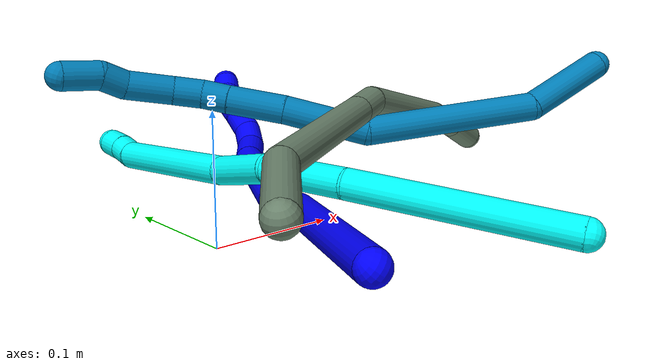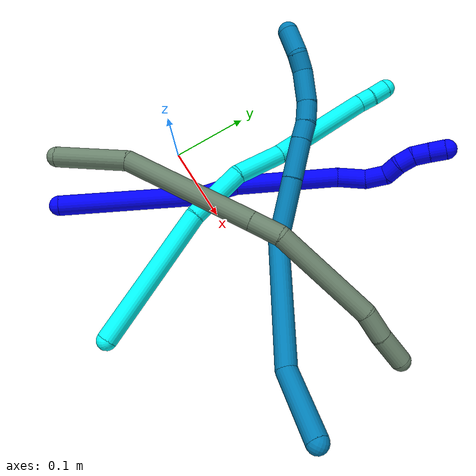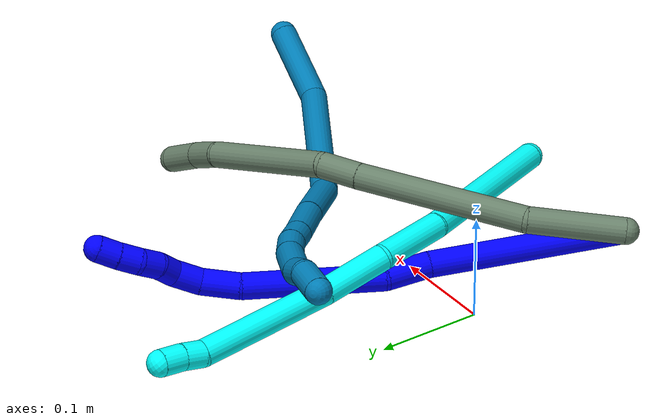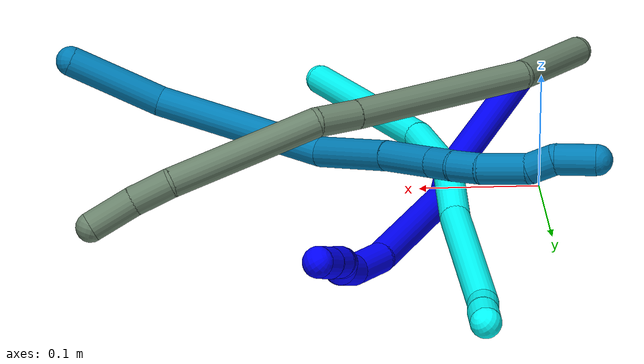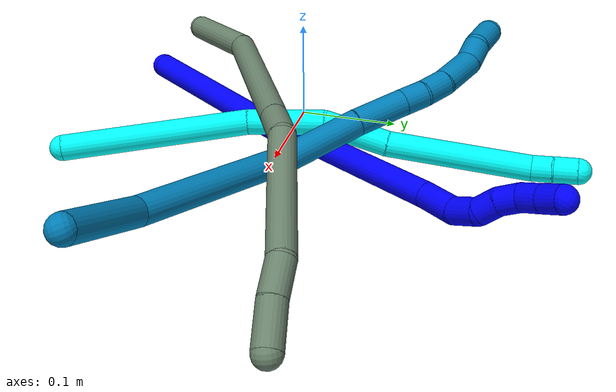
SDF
<sdf version="1.7">
 <world name="default">
  <model name="1">
   <static>0</static>
   <link name="1">
    <collision name="collision-cylinder-e_1_1_4">
     <pose>0.024673 0.086013 -0.006779 -1.64945 0.278531 -0.301017</pose>
     <geometry><cylinder><radius>0.0125</radius><length>0.179476</length></cylinder></geometry>
     <surface>
      <friction><ode><mu>1.16</mu><mu2>1.16</mu2><slip1>0</slip1><slip2>0</slip2></ode></friction>
      <contact><ode><kp>1e+06</kp><kd>1</kd><max_vel>0</max_vel><min_depth>0.001</min_depth></ode></contact>
     </surface>
    </collision>
    <visual name="visual-cylinder-e_1_1_4">
     <pose>0.024673 0.086013 -0.006779 -1.64945 0.278531 -0.301017</pose>
     <geometry><cylinder><radius>0.0125</radius><length>0.179476</length></cylinder></geometry>
     <material><ambient>0 0 1 1</ambient></material>
    </visual>
    <collision name="collision-cylinder-e_2_4_5">
     <pose>0.052414 0.193198 -0.010666 -1.43506 0.142604 -0.124502</pose>
     <geometry><cylinder><radius>0.0125</radius><length>0.043176</length></cylinder></geometry>
     <surface>
      <friction><ode><mu>1.16</mu><mu2>1.16</mu2><slip1>0</slip1><slip2>0</slip2></ode></friction>
      <contact><ode><kp>1e+06</kp><kd>1</kd><max_vel>0</max_vel><min_depth>0.001</min_depth></ode></contact>
     </surface>
    </collision>
    <visual name="visual-cylinder-e_2_4_5">
     <pose>0.052414 0.193198 -0.010666 -1.43506 0.142604 -0.124502</pose>
     <geometry><cylinder><radius>0.0125</radius><length>0.043176</length></cylinder></geometry>
     <material><ambient>0 0 1 1</ambient></material>
    </visual>
    <collision name="collision-cylinder-e_3_5_6">
     <pose>0.08051 0.275636 -0.01003 -1.60759 0.387593 -0.401742</pose>
     <geometry><cylinder><radius>0.0125</radius><length>0.132439</length></cylinder></geometry>
     <surface>
      <friction><ode><mu>1.16</mu><mu2>1.16</mu2><slip1>0</slip1><slip2>0</slip2></ode></friction>
      <contact><ode><kp>1e+06</kp><kd>1</kd><max_vel>0</max_vel><min_depth>0.001</min_depth></ode></contact>
     </surface>
    </collision>
    <visual name="visual-cylinder-e_3_5_6">
     <pose>0.08051 0.275636 -0.01003 -1.60759 0.387593 -0.401742</pose>
     <geometry><cylinder><radius>0.0125</radius><length>0.132439</length></cylinder></geometry>
     <material><ambient>0 0 1 1</ambient></material>
    </visual>
    <collision name="collision-cylinder-e_4_6_7">
     <pose>0.115543 0.352234 -0.014753 -1.7304 0.572308 -0.665108</pose>
     <geometry><cylinder><radius>0.0125</radius><length>0.036946</length></cylinder></geometry>
     <surface>
      <friction><ode><mu>1.16</mu><mu2>1.16</mu2><slip1>0</slip1><slip2>0</slip2></ode></friction>
      <contact><ode><kp>1e+06</kp><kd>1</kd><max_vel>0</max_vel><min_depth>0.001</min_depth></ode></contact>
     </surface>
    </collision>
    <visual name="visual-cylinder-e_4_6_7">
     <pose>0.115543 0.352234 -0.014753 -1.7304 0.572308 -0.665108</pose>
     <geometry><cylinder><radius>0.0125</radius><length>0.036946</length></cylinder></geometry>
     <material><ambient>0 0 1 1</ambient></material>
    </visual>
    <collision name="collision-cylinder-e_5_7_8">
     <pose>0.134283 0.377462 -0.014481 -1.3007 0.704883 -0.545656</pose>
     <geometry><cylinder><radius>0.0125</radius><length>0.026962</length></cylinder></geometry>
     <surface>
      <friction><ode><mu>1.16</mu><mu2>1.16</mu2><slip1>0</slip1><slip2>0</slip2></ode></friction>
      <contact><ode><kp>1e+06</kp><kd>1</kd><max_vel>0</max_vel><min_depth>0.001</min_depth></ode></contact>
     </surface>
    </collision>
    <visual name="visual-cylinder-e_5_7_8">
     <pose>0.134283 0.377462 -0.014481 -1.3007 0.704883 -0.545656</pose>
     <geometry><cylinder><radius>0.0125</radius><length>0.026962</length></cylinder></geometry>
     <material><ambient>0 0 1 1</ambient></material>
    </visual>
    <collision name="collision-cylinder-e_6_8_9">
     <pose>0.148359 0.392824 -0.005048 -0.684729 0.553612 -0.201818</pose>
     <geometry><cylinder><radius>0.0125</radius><length>0.020316</length></cylinder></geometry>
     <surface>
      <friction><ode><mu>1.16</mu><mu2>1.16</mu2><slip1>0</slip1><slip2>0</slip2></ode></friction>
      <contact><ode><kp>1e+06</kp><kd>1</kd><max_vel>0</max_vel><min_depth>0.001</min_depth></ode></contact>
     </surface>
    </collision>
    <visual name="visual-cylinder-e_6_8_9">
     <pose>0.148359 0.392824 -0.005048 -0.684729 0.553612 -0.201818</pose>
     <geometry><cylinder><radius>0.0125</radius><length>0.020316</length></cylinder></geometry>
     <material><ambient>0 0 1 1</ambient></material>
    </visual>
    <collision name="collision-cylinder-e_7_9_10">
     <pose>0.158638 0.40577 0.006432 -1.00156 0.507473 -0.281982</pose>
     <geometry><cylinder><radius>0.0125</radius><length>0.020325</length></cylinder></geometry>
     <surface>
      <friction><ode><mu>1.16</mu><mu2>1.16</mu2><slip1>0</slip1><slip2>0</slip2></ode></friction>
      <contact><ode><kp>1e+06</kp><kd>1</kd><max_vel>0</max_vel><min_depth>0.001</min_depth></ode></contact>
     </surface>
    </collision>
    <visual name="visual-cylinder-e_7_9_10">
     <pose>0.158638 0.40577 0.006432 -1.00156 0.507473 -0.281982</pose>
     <geometry><cylinder><radius>0.0125</radius><length>0.020325</length></cylinder></geometry>
     <material><ambient>0 0 1 1</ambient></material>
    </visual>
    <collision name="collision-cylinder-e_8_10_11">
     <pose>0.169825 0.420959 0.01314 -1.32652 0.666435 -0.528247</pose>
     <geometry><cylinder><radius>0.0125</radius><length>0.020214</length></cylinder></geometry>
     <surface>
      <friction><ode><mu>1.16</mu><mu2>1.16</mu2><slip1>0</slip1><slip2>0</slip2></ode></friction>
      <contact><ode><kp>1e+06</kp><kd>1</kd><max_vel>0</max_vel><min_depth>0.001</min_depth></ode></contact>
     </surface>
    </collision>
    <visual name="visual-cylinder-e_8_10_11">
     <pose>0.169825 0.420959 0.01314 -1.32652 0.666435 -0.528247</pose>
     <geometry><cylinder><radius>0.0125</radius><length>0.020214</length></cylinder></geometry>
     <material><ambient>0 0 1 1</ambient></material>
    </visual>
    <collision name="collision-cylinder-e_9_11_2">
     <pose>0.182886 0.435883 0.016789 -1.33581 0.742875 -0.59623</pose>
     <geometry><cylinder><radius>0.0125</radius><length>0.020146</length></cylinder></geometry>
     <surface>
      <friction><ode><mu>1.16</mu><mu2>1.16</mu2><slip1>0</slip1><slip2>0</slip2></ode></friction>
      <contact><ode><kp>1e+06</kp><kd>1</kd><max_vel>0</max_vel><min_depth>0.001</min_depth></ode></contact>
     </surface>
    </collision>
    <visual name="visual-cylinder-e_9_11_2">
     <pose>0.182886 0.435883 0.016789 -1.33581 0.742875 -0.59623</pose>
     <geometry><cylinder><radius>0.0125</radius><length>0.020146</length></cylinder></geometry>
     <material><ambient>0 0 1 1</ambient></material>
    </visual>
    <collision name="collision-sphere-2">
     <pose>0.189699 0.443098 0.018516 0 -0 0</pose>
     <geometry><sphere><radius>0.0125</radius></sphere></geometry>
     <surface>
      <friction><ode><mu>1.16</mu><mu2>1.16</mu2><slip1>0</slip1><slip2>0</slip2></ode></friction>
      <contact><ode><kp>1e+06</kp><kd>1</kd><max_vel>0</max_vel><min_depth>0.001</min_depth></ode></contact>
     </surface>
    </collision>
    <visual name="visual-sphere-2">
     <pose>0.189699 0.443098 0.018516 0 -0 0</pose>
     <geometry><sphere><radius>0.0125</radius></sphere></geometry>
     <material><ambient>0 0 1 1</ambient></material>
    </visual>
    <collision name="collision-sphere-11">
     <pose>0.176073 0.428668 0.015062 0 -0 0</pose>
     <geometry><sphere><radius>0.0125</radius></sphere></geometry>
     <surface>
      <friction><ode><mu>1.16</mu><mu2>1.16</mu2><slip1>0</slip1><slip2>0</slip2></ode></friction>
      <contact><ode><kp>1e+06</kp><kd>1</kd><max_vel>0</max_vel><min_depth>0.001</min_depth></ode></contact>
     </surface>
    </collision>
    <visual name="visual-sphere-11">
     <pose>0.176073 0.428668 0.015062 0 -0 0</pose>
     <geometry><sphere><radius>0.0125</radius></sphere></geometry>
     <material><ambient>0 0 1 1</ambient></material>
    </visual>
    <collision name="collision-sphere-10">
     <pose>0.163577 0.413251 0.011219 0 -0 0</pose>
     <geometry><sphere><radius>0.0125</radius></sphere></geometry>
     <surface>
      <friction><ode><mu>1.16</mu><mu2>1.16</mu2><slip1>0</slip1><slip2>0</slip2></ode></friction>
      <contact><ode><kp>1e+06</kp><kd>1</kd><max_vel>0</max_vel><min_depth>0.001</min_depth></ode></contact>
     </surface>
    </collision>
    <visual name="visual-sphere-10">
     <pose>0.163577 0.413251 0.011219 0 -0 0</pose>
     <geometry><sphere><radius>0.0125</radius></sphere></geometry>
     <material><ambient>0 0 1 1</ambient></material>
    </visual>
    <collision name="collision-sphere-9">
     <pose>0.1537 0.398289 0.001645 0 -0 0</pose>
     <geometry><sphere><radius>0.0125</radius></sphere></geometry>
     <surface>
      <friction><ode><mu>1.16</mu><mu2>1.16</mu2><slip1>0</slip1><slip2>0</slip2></ode></friction>
      <contact><ode><kp>1e+06</kp><kd>1</kd><max_vel>0</max_vel><min_depth>0.001</min_depth></ode></contact>
     </surface>
    </collision>
    <visual name="visual-sphere-9">
     <pose>0.1537 0.398289 0.001645 0 -0 0</pose>
     <geometry><sphere><radius>0.0125</radius></sphere></geometry>
     <material><ambient>0 0 1 1</ambient></material>
    </visual>
    <collision name="collision-sphere-4">
     <pose>0.049346 0.172025 -0.013558 0 -0 0</pose>
     <geometry><sphere><radius>0.0125</radius></sphere></geometry>
     <surface>
      <friction><ode><mu>1.16</mu><mu2>1.16</mu2><slip1>0</slip1><slip2>0</slip2></ode></friction>
      <contact><ode><kp>1e+06</kp><kd>1</kd><max_vel>0</max_vel><min_depth>0.001</min_depth></ode></contact>
     </surface>
    </collision>
    <visual name="visual-sphere-4">
     <pose>0.049346 0.172025 -0.013558 0 -0 0</pose>
     <geometry><sphere><radius>0.0125</radius></sphere></geometry>
     <material><ambient>0 0 1 1</ambient></material>
    </visual>
    <collision name="collision-sphere-1">
     <geometry><sphere><radius>0.0125</radius></sphere></geometry>
     <surface>
      <friction><ode><mu>1.16</mu><mu2>1.16</mu2><slip1>0</slip1><slip2>0</slip2></ode></friction>
      <contact><ode><kp>1e+06</kp><kd>1</kd><max_vel>0</max_vel><min_depth>0.001</min_depth></ode></contact>
     </surface>
    </collision>
    <visual name="visual-sphere-1">
     <geometry><sphere><radius>0.0125</radius></sphere></geometry>
     <material><ambient>0 0 1 1</ambient></material>
    </visual>
    <collision name="collision-sphere-8">
     <pose>0.143018 0.387358 -0.011742 0 -0 0</pose>
     <geometry><sphere><radius>0.0125</radius></sphere></geometry>
     <surface>
      <friction><ode><mu>1.16</mu><mu2>1.16</mu2><slip1>0</slip1><slip2>0</slip2></ode></friction>
      <contact><ode><kp>1e+06</kp><kd>1</kd><max_vel>0</max_vel><min_depth>0.001</min_depth></ode></contact>
     </surface>
    </collision>
    <visual name="visual-sphere-8">
     <pose>0.143018 0.387358 -0.011742 0 -0 0</pose>
     <geometry><sphere><radius>0.0125</radius></sphere></geometry>
     <material><ambient>0 0 1 1</ambient></material>
    </visual>
    <collision name="collision-sphere-5">
     <pose>0.055482 0.21437 -0.007775 0 -0 0</pose>
     <geometry><sphere><radius>0.0125</radius></sphere></geometry>
     <surface>
      <friction><ode><mu>1.16</mu><mu2>1.16</mu2><slip1>0</slip1><slip2>0</slip2></ode></friction>
      <contact><ode><kp>1e+06</kp><kd>1</kd><max_vel>0</max_vel><min_depth>0.001</min_depth></ode></contact>
     </surface>
    </collision>
    <visual name="visual-sphere-5">
     <pose>0.055482 0.21437 -0.007775 0 -0 0</pose>
     <geometry><sphere><radius>0.0125</radius></sphere></geometry>
     <material><ambient>0 0 1 1</ambient></material>
    </visual>
    <collision name="collision-sphere-6">
     <pose>0.105539 0.336902 -0.012285 0 -0 0</pose>
     <geometry><sphere><radius>0.0125</radius></sphere></geometry>
     <surface>
      <friction><ode><mu>1.16</mu><mu2>1.16</mu2><slip1>0</slip1><slip2>0</slip2></ode></friction>
      <contact><ode><kp>1e+06</kp><kd>1</kd><max_vel>0</max_vel><min_depth>0.001</min_depth></ode></contact>
     </surface>
    </collision>
    <visual name="visual-sphere-6">
     <pose>0.105539 0.336902 -0.012285 0 -0 0</pose>
     <geometry><sphere><radius>0.0125</radius></sphere></geometry>
     <material><ambient>0 0 1 1</ambient></material>
    </visual>
    <collision name="collision-sphere-7">
     <pose>0.125548 0.367566 -0.017221 0 -0 0</pose>
     <geometry><sphere><radius>0.0125</radius></sphere></geometry>
     <surface>
      <friction><ode><mu>1.16</mu><mu2>1.16</mu2><slip1>0</slip1><slip2>0</slip2></ode></friction>
      <contact><ode><kp>1e+06</kp><kd>1</kd><max_vel>0</max_vel><min_depth>0.001</min_depth></ode></contact>
     </surface>
    </collision>
    <visual name="visual-sphere-7">
     <pose>0.125548 0.367566 -0.017221 0 -0 0</pose>
     <geometry><sphere><radius>0.0125</radius></sphere></geometry>
     <material><ambient>0 0 1 1</ambient></material>
    </visual>
    <inertial>
     <pose>0.077198 0.233986 -0.006618 0 -0 0</pose>
     <mass>0.5</mass>
     <inertia>
      <ixx>0.000433</ixx>
      <ixy>0</ixy>
      <ixz>0</ixz>
      <iyy>-0.00015</iyy>
      <iyz>0</iyz>
      <izz>-0.000889</izz>
     </inertia>
    </inertial>
   </link>
   <pose>-0.003481 -0.162973 0.033165 -0.406486 -0.824374 0.096579</pose>
  </model>
  <model name="3">
   <static>0</static>
   <link name="3">
    <collision name="collision-cylinder-e_1_1_4">
     <pose>-0.033633 0.081438 0.017125 -1.36353 -0.384082 0.313023</pose>
     <geometry><cylinder><radius>0.0125</radius><length>0.179517</length></cylinder></geometry>
     <surface>
      <friction><ode><mu>1.16</mu><mu2>1.16</mu2><slip1>0</slip1><slip2>0</slip2></ode></friction>
      <contact><ode><kp>1e+06</kp><kd>1</kd><max_vel>0</max_vel><min_depth>0.001</min_depth></ode></contact>
     </surface>
    </collision>
    <visual name="visual-cylinder-e_1_1_4">
     <pose>-0.033633 0.081438 0.017125 -1.36353 -0.384082 0.313023</pose>
     <geometry><cylinder><radius>0.0125</radius><length>0.179517</length></cylinder></geometry>
     <material><ambient>0.003922 1 0.996078 1</ambient></material>
    </visual>
    <collision name="collision-cylinder-e_2_4_5">
     <pose>-0.074757 0.198504 0.043616 -1.31376 -0.200595 0.154893</pose>
     <geometry><cylinder><radius>0.0125</radius><length>0.075186</length></cylinder></geometry>
     <surface>
      <friction><ode><mu>1.16</mu><mu2>1.16</mu2><slip1>0</slip1><slip2>0</slip2></ode></friction>
      <contact><ode><kp>1e+06</kp><kd>1</kd><max_vel>0</max_vel><min_depth>0.001</min_depth></ode></contact>
     </surface>
    </collision>
    <visual name="visual-cylinder-e_2_4_5">
     <pose>-0.074757 0.198504 0.043616 -1.31376 -0.200595 0.154893</pose>
     <geometry><cylinder><radius>0.0125</radius><length>0.075186</length></cylinder></geometry>
     <material><ambient>0.003922 1 0.996078 1</ambient></material>
    </visual>
    <collision name="collision-cylinder-e_3_5_6">
     <pose>-0.078251 0.26566 0.059979 -1.35234 0.123132 -0.098839</pose>
     <geometry><cylinder><radius>0.0125</radius><length>0.065081</length></cylinder></geometry>
     <surface>
      <friction><ode><mu>1.16</mu><mu2>1.16</mu2><slip1>0</slip1><slip2>0</slip2></ode></friction>
      <contact><ode><kp>1e+06</kp><kd>1</kd><max_vel>0</max_vel><min_depth>0.001</min_depth></ode></contact>
     </surface>
    </collision>
    <visual name="visual-cylinder-e_3_5_6">
     <pose>-0.078251 0.26566 0.059979 -1.35234 0.123132 -0.098839</pose>
     <geometry><cylinder><radius>0.0125</radius><length>0.065081</length></cylinder></geometry>
     <material><ambient>0.003922 1 0.996078 1</ambient></material>
    </visual>
    <collision name="collision-cylinder-e_4_6_7">
     <pose>-0.075102 0.362985 0.087223 -1.27231 -0.012316 0.009097</pose>
     <geometry><cylinder><radius>0.0125</radius><length>0.137696</length></cylinder></geometry>
     <surface>
      <friction><ode><mu>1.16</mu><mu2>1.16</mu2><slip1>0</slip1><slip2>0</slip2></ode></friction>
      <contact><ode><kp>1e+06</kp><kd>1</kd><max_vel>0</max_vel><min_depth>0.001</min_depth></ode></contact>
     </surface>
    </collision>
    <visual name="visual-cylinder-e_4_6_7">
     <pose>-0.075102 0.362985 0.087223 -1.27231 -0.012316 0.009097</pose>
     <geometry><cylinder><radius>0.0125</radius><length>0.137696</length></cylinder></geometry>
     <material><ambient>0.003922 1 0.996078 1</ambient></material>
    </visual>
    <collision name="collision-cylinder-e_5_7_8">
     <pose>-0.076036 0.437325 0.112959 -0.999481 -0.008488 0.004634</pose>
     <geometry><cylinder><radius>0.0125</radius><length>0.02031</length></cylinder></geometry>
     <surface>
      <friction><ode><mu>1.16</mu><mu2>1.16</mu2><slip1>0</slip1><slip2>0</slip2></ode></friction>
      <contact><ode><kp>1e+06</kp><kd>1</kd><max_vel>0</max_vel><min_depth>0.001</min_depth></ode></contact>
     </surface>
    </collision>
    <visual name="visual-cylinder-e_5_7_8">
     <pose>-0.076036 0.437325 0.112959 -0.999481 -0.008488 0.004634</pose>
     <geometry><cylinder><radius>0.0125</radius><length>0.02031</length></cylinder></geometry>
     <material><ambient>0.003922 1 0.996078 1</ambient></material>
    </visual>
    <collision name="collision-cylinder-e_6_8_2">
     <pose>-0.076661 0.45577 0.123448 -1.10334 -0.04856 0.029887</pose>
     <geometry><cylinder><radius>0.0125</radius><length>0.022211</length></cylinder></geometry>
     <surface>
      <friction><ode><mu>1.16</mu><mu2>1.16</mu2><slip1>0</slip1><slip2>0</slip2></ode></friction>
      <contact><ode><kp>1e+06</kp><kd>1</kd><max_vel>0</max_vel><min_depth>0.001</min_depth></ode></contact>
     </surface>
    </collision>
    <visual name="visual-cylinder-e_6_8_2">
     <pose>-0.076661 0.45577 0.123448 -1.10334 -0.04856 0.029887</pose>
     <geometry><cylinder><radius>0.0125</radius><length>0.022211</length></cylinder></geometry>
     <material><ambient>0.003922 1 0.996078 1</ambient></material>
    </visual>
    <collision name="collision-sphere-2">
     <pose>-0.0772 0.465672 0.128447 0 -0 0</pose>
     <geometry><sphere><radius>0.0125</radius></sphere></geometry>
     <surface>
      <friction><ode><mu>1.16</mu><mu2>1.16</mu2><slip1>0</slip1><slip2>0</slip2></ode></friction>
      <contact><ode><kp>1e+06</kp><kd>1</kd><max_vel>0</max_vel><min_depth>0.001</min_depth></ode></contact>
     </surface>
    </collision>
    <visual name="visual-sphere-2">
     <pose>-0.0772 0.465672 0.128447 0 -0 0</pose>
     <geometry><sphere><radius>0.0125</radius></sphere></geometry>
     <material><ambient>0.003922 1 0.996078 1</ambient></material>
    </visual>
    <collision name="collision-sphere-4">
     <pose>-0.067266 0.162876 0.034251 0 -0 0</pose>
     <geometry><sphere><radius>0.0125</radius></sphere></geometry>
     <surface>
      <friction><ode><mu>1.16</mu><mu2>1.16</mu2><slip1>0</slip1><slip2>0</slip2></ode></friction>
      <contact><ode><kp>1e+06</kp><kd>1</kd><max_vel>0</max_vel><min_depth>0.001</min_depth></ode></contact>
     </surface>
    </collision>
    <visual name="visual-sphere-4">
     <pose>-0.067266 0.162876 0.034251 0 -0 0</pose>
     <geometry><sphere><radius>0.0125</radius></sphere></geometry>
     <material><ambient>0.003922 1 0.996078 1</ambient></material>
    </visual>
    <collision name="collision-sphere-1">
     <geometry><sphere><radius>0.0125</radius></sphere></geometry>
     <surface>
      <friction><ode><mu>1.16</mu><mu2>1.16</mu2><slip1>0</slip1><slip2>0</slip2></ode></friction>
      <contact><ode><kp>1e+06</kp><kd>1</kd><max_vel>0</max_vel><min_depth>0.001</min_depth></ode></contact>
     </surface>
    </collision>
    <visual name="visual-sphere-1">
     <geometry><sphere><radius>0.0125</radius></sphere></geometry>
     <material><ambient>0.003922 1 0.996078 1</ambient></material>
    </visual>
    <collision name="collision-sphere-8">
     <pose>-0.076122 0.445867 0.11845 0 -0 0</pose>
     <geometry><sphere><radius>0.0125</radius></sphere></geometry>
     <surface>
      <friction><ode><mu>1.16</mu><mu2>1.16</mu2><slip1>0</slip1><slip2>0</slip2></ode></friction>
      <contact><ode><kp>1e+06</kp><kd>1</kd><max_vel>0</max_vel><min_depth>0.001</min_depth></ode></contact>
     </surface>
    </collision>
    <visual name="visual-sphere-8">
     <pose>-0.076122 0.445867 0.11845 0 -0 0</pose>
     <geometry><sphere><radius>0.0125</radius></sphere></geometry>
     <material><ambient>0.003922 1 0.996078 1</ambient></material>
    </visual>
    <collision name="collision-sphere-5">
     <pose>-0.082247 0.234133 0.05298 0 -0 0</pose>
     <geometry><sphere><radius>0.0125</radius></sphere></geometry>
     <surface>
      <friction><ode><mu>1.16</mu><mu2>1.16</mu2><slip1>0</slip1><slip2>0</slip2></ode></friction>
      <contact><ode><kp>1e+06</kp><kd>1</kd><max_vel>0</max_vel><min_depth>0.001</min_depth></ode></contact>
     </surface>
    </collision>
    <visual name="visual-sphere-5">
     <pose>-0.082247 0.234133 0.05298 0 -0 0</pose>
     <geometry><sphere><radius>0.0125</radius></sphere></geometry>
     <material><ambient>0.003922 1 0.996078 1</ambient></material>
    </visual>
    <collision name="collision-sphere-6">
     <pose>-0.074254 0.297186 0.066978 0 -0 0</pose>
     <geometry><sphere><radius>0.0125</radius></sphere></geometry>
     <surface>
      <friction><ode><mu>1.16</mu><mu2>1.16</mu2><slip1>0</slip1><slip2>0</slip2></ode></friction>
      <contact><ode><kp>1e+06</kp><kd>1</kd><max_vel>0</max_vel><min_depth>0.001</min_depth></ode></contact>
     </surface>
    </collision>
    <visual name="visual-sphere-6">
     <pose>-0.074254 0.297186 0.066978 0 -0 0</pose>
     <geometry><sphere><radius>0.0125</radius></sphere></geometry>
     <material><ambient>0.003922 1 0.996078 1</ambient></material>
    </visual>
    <collision name="collision-sphere-7">
     <pose>-0.07595 0.428783 0.107468 0 -0 0</pose>
     <geometry><sphere><radius>0.0125</radius></sphere></geometry>
     <surface>
      <friction><ode><mu>1.16</mu><mu2>1.16</mu2><slip1>0</slip1><slip2>0</slip2></ode></friction>
      <contact><ode><kp>1e+06</kp><kd>1</kd><max_vel>0</max_vel><min_depth>0.001</min_depth></ode></contact>
     </surface>
    </collision>
    <visual name="visual-sphere-7">
     <pose>-0.07595 0.428783 0.107468 0 -0 0</pose>
     <geometry><sphere><radius>0.0125</radius></sphere></geometry>
     <material><ambient>0.003922 1 0.996078 1</ambient></material>
    </visual>
    <inertial>
     <pose>-0.060678 0.23164 0.054607 0 -0 0</pose>
     <mass>0.5</mass>
     <inertia>
      <ixx>0.000859</ixx>
      <ixy>0</ixy>
      <ixz>0</ixz>
      <iyy>0.000416</iyy>
      <iyz>0</iyz>
      <izz>-0.00052</izz>
     </inertia>
    </inertial>
   </link>
   <pose>0.171002 -0.191402 0.02022 -0.396826 0.642313 -0.001075</pose>
  </model>
  <model name="9">
   <static>0</static>
   <link name="9">
    <collision name="collision-cylinder-e_1_1_4">
     <pose>-0.034073 0.008745 -0.021017 -2.74727 -0.981813 2.42635</pose>
     <geometry><cylinder><radius>0.0125</radius><length>0.081954</length></cylinder></geometry>
     <surface>
      <friction><ode><mu>1.16</mu><mu2>1.16</mu2><slip1>0</slip1><slip2>0</slip2></ode></friction>
      <contact><ode><kp>1e+06</kp><kd>1</kd><max_vel>0</max_vel><min_depth>0.001</min_depth></ode></contact>
     </surface>
    </collision>
    <visual name="visual-cylinder-e_1_1_4">
     <pose>-0.034073 0.008745 -0.021017 -2.74727 -0.981813 2.42635</pose>
     <geometry><cylinder><radius>0.0125</radius><length>0.081954</length></cylinder></geometry>
     <material><ambient>0 0.490196 0.709804 1</ambient></material>
    </visual>
    <collision name="collision-cylinder-e_2_4_5">
     <pose>-0.108827 0.029686 -0.104238 -2.948 -0.570576 2.50215</pose>
     <geometry><cylinder><radius>0.0125</radius><length>0.150641</length></cylinder></geometry>
     <surface>
      <friction><ode><mu>1.16</mu><mu2>1.16</mu2><slip1>0</slip1><slip2>0</slip2></ode></friction>
      <contact><ode><kp>1e+06</kp><kd>1</kd><max_vel>0</max_vel><min_depth>0.001</min_depth></ode></contact>
     </surface>
    </collision>
    <visual name="visual-cylinder-e_2_4_5">
     <pose>-0.108827 0.029686 -0.104238 -2.948 -0.570576 2.50215</pose>
     <geometry><cylinder><radius>0.0125</radius><length>0.150641</length></cylinder></geometry>
     <material><ambient>0 0.490196 0.709804 1</ambient></material>
    </visual>
    <collision name="collision-cylinder-e_3_5_6">
     <pose>-0.154525 0.047105 -0.202773 -2.99879 -0.135813 1.52045</pose>
     <geometry><cylinder><radius>0.0125</radius><length>0.074092</length></cylinder></geometry>
     <surface>
      <friction><ode><mu>1.16</mu><mu2>1.16</mu2><slip1>0</slip1><slip2>0</slip2></ode></friction>
      <contact><ode><kp>1e+06</kp><kd>1</kd><max_vel>0</max_vel><min_depth>0.001</min_depth></ode></contact>
     </surface>
    </collision>
    <visual name="visual-cylinder-e_3_5_6">
     <pose>-0.154525 0.047105 -0.202773 -2.99879 -0.135813 1.52045</pose>
     <geometry><cylinder><radius>0.0125</radius><length>0.074092</length></cylinder></geometry>
     <material><ambient>0 0.490196 0.709804 1</ambient></material>
    </visual>
    <collision name="collision-cylinder-e_4_6_7">
     <pose>-0.164341 0.054872 -0.262973 -3.03547 -0.197387 2.1569</pose>
     <geometry><cylinder><radius>0.0125</radius><length>0.048958</length></cylinder></geometry>
     <surface>
      <friction><ode><mu>1.16</mu><mu2>1.16</mu2><slip1>0</slip1><slip2>0</slip2></ode></friction>
      <contact><ode><kp>1e+06</kp><kd>1</kd><max_vel>0</max_vel><min_depth>0.001</min_depth></ode></contact>
     </surface>
    </collision>
    <visual name="visual-cylinder-e_4_6_7">
     <pose>-0.164341 0.054872 -0.262973 -3.03547 -0.197387 2.1569</pose>
     <geometry><cylinder><radius>0.0125</radius><length>0.048958</length></cylinder></geometry>
     <material><ambient>0 0.490196 0.709804 1</ambient></material>
    </visual>
    <collision name="collision-cylinder-e_5_7_8">
     <pose>-0.170888 0.058208 -0.298042 -3.07088 -0.15429 2.28325</pose>
     <geometry><cylinder><radius>0.0125</radius><length>0.022727</length></cylinder></geometry>
     <surface>
      <friction><ode><mu>1.16</mu><mu2>1.16</mu2><slip1>0</slip1><slip2>0</slip2></ode></friction>
      <contact><ode><kp>1e+06</kp><kd>1</kd><max_vel>0</max_vel><min_depth>0.001</min_depth></ode></contact>
     </surface>
    </collision>
    <visual name="visual-cylinder-e_5_7_8">
     <pose>-0.170888 0.058208 -0.298042 -3.07088 -0.15429 2.28325</pose>
     <geometry><cylinder><radius>0.0125</radius><length>0.022727</length></cylinder></geometry>
     <material><ambient>0 0.490196 0.709804 1</ambient></material>
    </visual>
    <collision name="collision-cylinder-e_6_8_9">
     <pose>-0.176456 0.061738 -0.321166 -2.91598 -0.302763 1.86404</pose>
     <geometry><cylinder><radius>0.0125</radius><length>0.025632</length></cylinder></geometry>
     <surface>
      <friction><ode><mu>1.16</mu><mu2>1.16</mu2><slip1>0</slip1><slip2>0</slip2></ode></friction>
      <contact><ode><kp>1e+06</kp><kd>1</kd><max_vel>0</max_vel><min_depth>0.001</min_depth></ode></contact>
     </surface>
    </collision>
    <visual name="visual-cylinder-e_6_8_9">
     <pose>-0.176456 0.061738 -0.321166 -2.91598 -0.302763 1.86404</pose>
     <geometry><cylinder><radius>0.0125</radius><length>0.025632</length></cylinder></geometry>
     <material><ambient>0 0.490196 0.709804 1</ambient></material>
    </visual>
    <collision name="collision-cylinder-e_7_9_10">
     <pose>-0.187571 0.072175 -0.350465 -2.72443 -0.36644 1.43818</pose>
     <geometry><cylinder><radius>0.0125</radius><length>0.040714</length></cylinder></geometry>
     <surface>
      <friction><ode><mu>1.16</mu><mu2>1.16</mu2><slip1>0</slip1><slip2>0</slip2></ode></friction>
      <contact><ode><kp>1e+06</kp><kd>1</kd><max_vel>0</max_vel><min_depth>0.001</min_depth></ode></contact>
     </surface>
    </collision>
    <visual name="visual-cylinder-e_7_9_10">
     <pose>-0.187571 0.072175 -0.350465 -2.72443 -0.36644 1.43818</pose>
     <geometry><cylinder><radius>0.0125</radius><length>0.040714</length></cylinder></geometry>
     <material><ambient>0 0.490196 0.709804 1</ambient></material>
    </visual>
    <collision name="collision-cylinder-e_8_10_11">
     <pose>-0.196785 0.087144 -0.376145 -2.42261 -0.172278 0.451699</pose>
     <geometry><cylinder><radius>0.0125</radius><length>0.022404</length></cylinder></geometry>
     <surface>
      <friction><ode><mu>1.16</mu><mu2>1.16</mu2><slip1>0</slip1><slip2>0</slip2></ode></friction>
      <contact><ode><kp>1e+06</kp><kd>1</kd><max_vel>0</max_vel><min_depth>0.001</min_depth></ode></contact>
     </surface>
    </collision>
    <visual name="visual-cylinder-e_8_10_11">
     <pose>-0.196785 0.087144 -0.376145 -2.42261 -0.172278 0.451699</pose>
     <geometry><cylinder><radius>0.0125</radius><length>0.022404</length></cylinder></geometry>
     <material><ambient>0 0.490196 0.709804 1</ambient></material>
    </visual>
    <collision name="collision-cylinder-e_9_11_2">
     <pose>-0.207317 0.102284 -0.39603 -2.54461 -0.551375 1.48689</pose>
     <geometry><cylinder><radius>0.0125</radius><length>0.032878</length></cylinder></geometry>
     <surface>
      <friction><ode><mu>1.16</mu><mu2>1.16</mu2><slip1>0</slip1><slip2>0</slip2></ode></friction>
      <contact><ode><kp>1e+06</kp><kd>1</kd><max_vel>0</max_vel><min_depth>0.001</min_depth></ode></contact>
     </surface>
    </collision>
    <visual name="visual-cylinder-e_9_11_2">
     <pose>-0.207317 0.102284 -0.39603 -2.54461 -0.551375 1.48689</pose>
     <geometry><cylinder><radius>0.0125</radius><length>0.032878</length></cylinder></geometry>
     <material><ambient>0 0.490196 0.709804 1</ambient></material>
    </visual>
    <collision name="collision-sphere-2">
     <pose>-0.215928 0.110156 -0.407611 0 -0 0</pose>
     <geometry><sphere><radius>0.0125</radius></sphere></geometry>
     <surface>
      <friction><ode><mu>1.16</mu><mu2>1.16</mu2><slip1>0</slip1><slip2>0</slip2></ode></friction>
      <contact><ode><kp>1e+06</kp><kd>1</kd><max_vel>0</max_vel><min_depth>0.001</min_depth></ode></contact>
     </surface>
    </collision>
    <visual name="visual-sphere-2">
     <pose>-0.215928 0.110156 -0.407611 0 -0 0</pose>
     <geometry><sphere><radius>0.0125</radius></sphere></geometry>
     <material><ambient>0 0.490196 0.709804 1</ambient></material>
    </visual>
    <collision name="collision-sphere-11">
     <pose>-0.198705 0.094412 -0.384449 0 -0 0</pose>
     <geometry><sphere><radius>0.0125</radius></sphere></geometry>
     <surface>
      <friction><ode><mu>1.16</mu><mu2>1.16</mu2><slip1>0</slip1><slip2>0</slip2></ode></friction>
      <contact><ode><kp>1e+06</kp><kd>1</kd><max_vel>0</max_vel><min_depth>0.001</min_depth></ode></contact>
     </surface>
    </collision>
    <visual name="visual-sphere-11">
     <pose>-0.198705 0.094412 -0.384449 0 -0 0</pose>
     <geometry><sphere><radius>0.0125</radius></sphere></geometry>
     <material><ambient>0 0.490196 0.709804 1</ambient></material>
    </visual>
    <collision name="collision-sphere-10">
     <pose>-0.194864 0.079875 -0.36784 0 -0 0</pose>
     <geometry><sphere><radius>0.0125</radius></sphere></geometry>
     <surface>
      <friction><ode><mu>1.16</mu><mu2>1.16</mu2><slip1>0</slip1><slip2>0</slip2></ode></friction>
      <contact><ode><kp>1e+06</kp><kd>1</kd><max_vel>0</max_vel><min_depth>0.001</min_depth></ode></contact>
     </surface>
    </collision>
    <visual name="visual-sphere-10">
     <pose>-0.194864 0.079875 -0.36784 0 -0 0</pose>
     <geometry><sphere><radius>0.0125</radius></sphere></geometry>
     <material><ambient>0 0.490196 0.709804 1</ambient></material>
    </visual>
    <collision name="collision-sphere-9">
     <pose>-0.180277 0.064474 -0.333089 0 -0 0</pose>
     <geometry><sphere><radius>0.0125</radius></sphere></geometry>
     <surface>
      <friction><ode><mu>1.16</mu><mu2>1.16</mu2><slip1>0</slip1><slip2>0</slip2></ode></friction>
      <contact><ode><kp>1e+06</kp><kd>1</kd><max_vel>0</max_vel><min_depth>0.001</min_depth></ode></contact>
     </surface>
    </collision>
    <visual name="visual-sphere-9">
     <pose>-0.180277 0.064474 -0.333089 0 -0 0</pose>
     <geometry><sphere><radius>0.0125</radius></sphere></geometry>
     <material><ambient>0 0.490196 0.709804 1</ambient></material>
    </visual>
    <collision name="collision-sphere-4">
     <pose>-0.068145 0.017491 -0.042033 0 -0 0</pose>
     <geometry><sphere><radius>0.0125</radius></sphere></geometry>
     <surface>
      <friction><ode><mu>1.16</mu><mu2>1.16</mu2><slip1>0</slip1><slip2>0</slip2></ode></friction>
      <contact><ode><kp>1e+06</kp><kd>1</kd><max_vel>0</max_vel><min_depth>0.001</min_depth></ode></contact>
     </surface>
    </collision>
    <visual name="visual-sphere-4">
     <pose>-0.068145 0.017491 -0.042033 0 -0 0</pose>
     <geometry><sphere><radius>0.0125</radius></sphere></geometry>
     <material><ambient>0 0.490196 0.709804 1</ambient></material>
    </visual>
    <collision name="collision-sphere-1">
     <geometry><sphere><radius>0.0125</radius></sphere></geometry>
     <surface>
      <friction><ode><mu>1.16</mu><mu2>1.16</mu2><slip1>0</slip1><slip2>0</slip2></ode></friction>
      <contact><ode><kp>1e+06</kp><kd>1</kd><max_vel>0</max_vel><min_depth>0.001</min_depth></ode></contact>
     </surface>
    </collision>
    <visual name="visual-sphere-1">
     <geometry><sphere><radius>0.0125</radius></sphere></geometry>
     <material><ambient>0 0.490196 0.709804 1</ambient></material>
    </visual>
    <collision name="collision-sphere-8">
     <pose>-0.172634 0.059001 -0.309243 0 -0 0</pose>
     <geometry><sphere><radius>0.0125</radius></sphere></geometry>
     <surface>
      <friction><ode><mu>1.16</mu><mu2>1.16</mu2><slip1>0</slip1><slip2>0</slip2></ode></friction>
      <contact><ode><kp>1e+06</kp><kd>1</kd><max_vel>0</max_vel><min_depth>0.001</min_depth></ode></contact>
     </surface>
    </collision>
    <visual name="visual-sphere-8">
     <pose>-0.172634 0.059001 -0.309243 0 -0 0</pose>
     <geometry><sphere><radius>0.0125</radius></sphere></geometry>
     <material><ambient>0 0.490196 0.709804 1</ambient></material>
    </visual>
    <collision name="collision-sphere-5">
     <pose>-0.149509 0.041882 -0.166442 0 -0 0</pose>
     <geometry><sphere><radius>0.0125</radius></sphere></geometry>
     <surface>
      <friction><ode><mu>1.16</mu><mu2>1.16</mu2><slip1>0</slip1><slip2>0</slip2></ode></friction>
      <contact><ode><kp>1e+06</kp><kd>1</kd><max_vel>0</max_vel><min_depth>0.001</min_depth></ode></contact>
     </surface>
    </collision>
    <visual name="visual-sphere-5">
     <pose>-0.149509 0.041882 -0.166442 0 -0 0</pose>
     <geometry><sphere><radius>0.0125</radius></sphere></geometry>
     <material><ambient>0 0.490196 0.709804 1</ambient></material>
    </visual>
    <collision name="collision-sphere-6">
     <pose>-0.159541 0.052329 -0.239104 0 -0 0</pose>
     <geometry><sphere><radius>0.0125</radius></sphere></geometry>
     <surface>
      <friction><ode><mu>1.16</mu><mu2>1.16</mu2><slip1>0</slip1><slip2>0</slip2></ode></friction>
      <contact><ode><kp>1e+06</kp><kd>1</kd><max_vel>0</max_vel><min_depth>0.001</min_depth></ode></contact>
     </surface>
    </collision>
    <visual name="visual-sphere-6">
     <pose>-0.159541 0.052329 -0.239104 0 -0 0</pose>
     <geometry><sphere><radius>0.0125</radius></sphere></geometry>
     <material><ambient>0 0.490196 0.709804 1</ambient></material>
    </visual>
    <collision name="collision-sphere-7">
     <pose>-0.169142 0.057414 -0.286842 0 -0 0</pose>
     <geometry><sphere><radius>0.0125</radius></sphere></geometry>
     <surface>
      <friction><ode><mu>1.16</mu><mu2>1.16</mu2><slip1>0</slip1><slip2>0</slip2></ode></friction>
      <contact><ode><kp>1e+06</kp><kd>1</kd><max_vel>0</max_vel><min_depth>0.001</min_depth></ode></contact>
     </surface>
    </collision>
    <visual name="visual-sphere-7">
     <pose>-0.169142 0.057414 -0.286842 0 -0 0</pose>
     <geometry><sphere><radius>0.0125</radius></sphere></geometry>
     <material><ambient>0 0.490196 0.709804 1</ambient></material>
    </visual>
    <inertial>
     <pose>-0.131899 0.045049 -0.192092 0 -0 0</pose>
     <mass>0.5</mass>
     <inertia>
      <ixx>-1.3e-05</ixx>
      <ixy>0</ixy>
      <ixz>0</ixz>
      <iyy>0.000532</iyy>
      <iyz>0</iyz>
      <izz>0.000109</izz>
     </inertia>
    </inertial>
   </link>
   <pose>0.38699 -0.052871 0.100554 2.01999 -0.894218 0.212234</pose>
  </model>
  <model name="17">
   <static>0</static>
   <link name="17">
    <collision name="collision-cylinder-e_1_1_4">
     <pose>-0.014331 0.040909 0.011525 -1.29619 -0.325224 0.247188</pose>
     <geometry><cylinder><radius>0.0125</radius><length>0.089705</length></cylinder></geometry>
     <surface>
      <friction><ode><mu>1.16</mu><mu2>1.16</mu2><slip1>0</slip1><slip2>0</slip2></ode></friction>
      <contact><ode><kp>1e+06</kp><kd>1</kd><max_vel>0</max_vel><min_depth>0.001</min_depth></ode></contact>
     </surface>
    </collision>
    <visual name="visual-cylinder-e_1_1_4">
     <pose>-0.014331 0.040909 0.011525 -1.29619 -0.325224 0.247188</pose>
     <geometry><cylinder><radius>0.0125</radius><length>0.089705</length></cylinder></geometry>
     <material><ambient>0.415686 0.509804 0.423529 1</ambient></material>
    </visual>
    <collision name="collision-cylinder-e_2_4_5">
     <pose>-0.08115 0.140288 0.052165 -1.10879 -0.676906 0.429181</pose>
     <geometry><cylinder><radius>0.0125</radius><length>0.167589</length></cylinder></geometry>
     <surface>
      <friction><ode><mu>1.16</mu><mu2>1.16</mu2><slip1>0</slip1><slip2>0</slip2></ode></friction>
      <contact><ode><kp>1e+06</kp><kd>1</kd><max_vel>0</max_vel><min_depth>0.001</min_depth></ode></contact>
     </surface>
    </collision>
    <visual name="visual-cylinder-e_2_4_5">
     <pose>-0.08115 0.140288 0.052165 -1.10879 -0.676906 0.429181</pose>
     <geometry><cylinder><radius>0.0125</radius><length>0.167589</length></cylinder></geometry>
     <material><ambient>0.415686 0.509804 0.423529 1</ambient></material>
    </visual>
    <collision name="collision-cylinder-e_3_5_6">
     <pose>-0.14607 0.212004 0.087393 -1.13844 -0.705828 0.462925</pose>
     <geometry><cylinder><radius>0.0125</radius><length>0.038334</length></cylinder></geometry>
     <surface>
      <friction><ode><mu>1.16</mu><mu2>1.16</mu2><slip1>0</slip1><slip2>0</slip2></ode></friction>
      <contact><ode><kp>1e+06</kp><kd>1</kd><max_vel>0</max_vel><min_depth>0.001</min_depth></ode></contact>
     </surface>
    </collision>
    <visual name="visual-cylinder-e_3_5_6">
     <pose>-0.14607 0.212004 0.087393 -1.13844 -0.705828 0.462925</pose>
     <geometry><cylinder><radius>0.0125</radius><length>0.038334</length></cylinder></geometry>
     <material><ambient>0.415686 0.509804 0.423529 1</ambient></material>
    </visual>
    <collision name="collision-cylinder-e_4_6_7">
     <pose>-0.203091 0.254041 0.131648 -0.646595 -0.750751 0.262544</pose>
     <geometry><cylinder><radius>0.0125</radius><length>0.130719</length></cylinder></geometry>
     <surface>
      <friction><ode><mu>1.16</mu><mu2>1.16</mu2><slip1>0</slip1><slip2>0</slip2></ode></friction>
      <contact><ode><kp>1e+06</kp><kd>1</kd><max_vel>0</max_vel><min_depth>0.001</min_depth></ode></contact>
     </surface>
    </collision>
    <visual name="visual-cylinder-e_4_6_7">
     <pose>-0.203091 0.254041 0.131648 -0.646595 -0.750751 0.262544</pose>
     <geometry><cylinder><radius>0.0125</radius><length>0.130719</length></cylinder></geometry>
     <material><ambient>0.415686 0.509804 0.423529 1</ambient></material>
    </visual>
    <collision name="collision-cylinder-e_5_7_8">
     <pose>-0.259469 0.286152 0.18141 -0.27827 -0.773115 0.11388</pose>
     <geometry><cylinder><radius>0.0125</radius><length>0.033768</length></cylinder></geometry>
     <surface>
      <friction><ode><mu>1.16</mu><mu2>1.16</mu2><slip1>0</slip1><slip2>0</slip2></ode></friction>
      <contact><ode><kp>1e+06</kp><kd>1</kd><max_vel>0</max_vel><min_depth>0.001</min_depth></ode></contact>
     </surface>
    </collision>
    <visual name="visual-cylinder-e_5_7_8">
     <pose>-0.259469 0.286152 0.18141 -0.27827 -0.773115 0.11388</pose>
     <geometry><cylinder><radius>0.0125</radius><length>0.033768</length></cylinder></geometry>
     <material><ambient>0.415686 0.509804 0.423529 1</ambient></material>
    </visual>
    <collision name="collision-cylinder-e_6_8_2">
     <pose>-0.283643 0.294854 0.207707 -0.351442 -0.669903 0.123443</pose>
     <geometry><cylinder><radius>0.0125</radius><length>0.039886</length></cylinder></geometry>
     <surface>
      <friction><ode><mu>1.16</mu><mu2>1.16</mu2><slip1>0</slip1><slip2>0</slip2></ode></friction>
      <contact><ode><kp>1e+06</kp><kd>1</kd><max_vel>0</max_vel><min_depth>0.001</min_depth></ode></contact>
     </surface>
    </collision>
    <visual name="visual-cylinder-e_6_8_2">
     <pose>-0.283643 0.294854 0.207707 -0.351442 -0.669903 0.123443</pose>
     <geometry><cylinder><radius>0.0125</radius><length>0.039886</length></cylinder></geometry>
     <material><ambient>0.415686 0.509804 0.423529 1</ambient></material>
    </visual>
    <collision name="collision-sphere-2">
     <pose>-0.296026 0.300235 0.222385 0 -0 0</pose>
     <geometry><sphere><radius>0.0125</radius></sphere></geometry>
     <surface>
      <friction><ode><mu>1.16</mu><mu2>1.16</mu2><slip1>0</slip1><slip2>0</slip2></ode></friction>
      <contact><ode><kp>1e+06</kp><kd>1</kd><max_vel>0</max_vel><min_depth>0.001</min_depth></ode></contact>
     </surface>
    </collision>
    <visual name="visual-sphere-2">
     <pose>-0.296026 0.300235 0.222385 0 -0 0</pose>
     <geometry><sphere><radius>0.0125</radius></sphere></geometry>
     <material><ambient>0.415686 0.509804 0.423529 1</ambient></material>
    </visual>
    <collision name="collision-sphere-4">
     <pose>-0.028663 0.081818 0.02305 0 -0 0</pose>
     <geometry><sphere><radius>0.0125</radius></sphere></geometry>
     <surface>
      <friction><ode><mu>1.16</mu><mu2>1.16</mu2><slip1>0</slip1><slip2>0</slip2></ode></friction>
      <contact><ode><kp>1e+06</kp><kd>1</kd><max_vel>0</max_vel><min_depth>0.001</min_depth></ode></contact>
     </surface>
    </collision>
    <visual name="visual-sphere-4">
     <pose>-0.028663 0.081818 0.02305 0 -0 0</pose>
     <geometry><sphere><radius>0.0125</radius></sphere></geometry>
     <material><ambient>0.415686 0.509804 0.423529 1</ambient></material>
    </visual>
    <collision name="collision-sphere-1">
     <geometry><sphere><radius>0.0125</radius></sphere></geometry>
     <surface>
      <friction><ode><mu>1.16</mu><mu2>1.16</mu2><slip1>0</slip1><slip2>0</slip2></ode></friction>
      <contact><ode><kp>1e+06</kp><kd>1</kd><max_vel>0</max_vel><min_depth>0.001</min_depth></ode></contact>
     </surface>
    </collision>
    <visual name="visual-sphere-1">
     <geometry><sphere><radius>0.0125</radius></sphere></geometry>
     <material><ambient>0.415686 0.509804 0.423529 1</ambient></material>
    </visual>
    <collision name="collision-sphere-8">
     <pose>-0.27126 0.289472 0.193029 0 -0 0</pose>
     <geometry><sphere><radius>0.0125</radius></sphere></geometry>
     <surface>
      <friction><ode><mu>1.16</mu><mu2>1.16</mu2><slip1>0</slip1><slip2>0</slip2></ode></friction>
      <contact><ode><kp>1e+06</kp><kd>1</kd><max_vel>0</max_vel><min_depth>0.001</min_depth></ode></contact>
     </surface>
    </collision>
    <visual name="visual-sphere-8">
     <pose>-0.27126 0.289472 0.193029 0 -0 0</pose>
     <geometry><sphere><radius>0.0125</radius></sphere></geometry>
     <material><ambient>0.415686 0.509804 0.423529 1</ambient></material>
    </visual>
    <collision name="collision-sphere-5">
     <pose>-0.133637 0.198759 0.081281 0 -0 0</pose>
     <geometry><sphere><radius>0.0125</radius></sphere></geometry>
     <surface>
      <friction><ode><mu>1.16</mu><mu2>1.16</mu2><slip1>0</slip1><slip2>0</slip2></ode></friction>
      <contact><ode><kp>1e+06</kp><kd>1</kd><max_vel>0</max_vel><min_depth>0.001</min_depth></ode></contact>
     </surface>
    </collision>
    <visual name="visual-sphere-5">
     <pose>-0.133637 0.198759 0.081281 0 -0 0</pose>
     <geometry><sphere><radius>0.0125</radius></sphere></geometry>
     <material><ambient>0.415686 0.509804 0.423529 1</ambient></material>
    </visual>
    <collision name="collision-sphere-6">
     <pose>-0.158503 0.22525 0.093505 0 -0 0</pose>
     <geometry><sphere><radius>0.0125</radius></sphere></geometry>
     <surface>
      <friction><ode><mu>1.16</mu><mu2>1.16</mu2><slip1>0</slip1><slip2>0</slip2></ode></friction>
      <contact><ode><kp>1e+06</kp><kd>1</kd><max_vel>0</max_vel><min_depth>0.001</min_depth></ode></contact>
     </surface>
    </collision>
    <visual name="visual-sphere-6">
     <pose>-0.158503 0.22525 0.093505 0 -0 0</pose>
     <geometry><sphere><radius>0.0125</radius></sphere></geometry>
     <material><ambient>0.415686 0.509804 0.423529 1</ambient></material>
    </visual>
    <collision name="collision-sphere-7">
     <pose>-0.247678 0.282833 0.16979 0 -0 0</pose>
     <geometry><sphere><radius>0.0125</radius></sphere></geometry>
     <surface>
      <friction><ode><mu>1.16</mu><mu2>1.16</mu2><slip1>0</slip1><slip2>0</slip2></ode></friction>
      <contact><ode><kp>1e+06</kp><kd>1</kd><max_vel>0</max_vel><min_depth>0.001</min_depth></ode></contact>
     </surface>
    </collision>
    <visual name="visual-sphere-7">
     <pose>-0.247678 0.282833 0.16979 0 -0 0</pose>
     <geometry><sphere><radius>0.0125</radius></sphere></geometry>
     <material><ambient>0.415686 0.509804 0.423529 1</ambient></material>
    </visual>
    <inertial>
     <pose>-0.134216 0.179877 0.089491 0 -0 0</pose>
     <mass>0.5</mass>
     <inertia><ixx>0.000649</ixx><ixy>0</ixy><ixz>0</ixz><iyy>0.000666</iyy><iyz>0</iyz><izz>2e-06</izz></inertia>
    </inertial>
   </link>
   <pose>-0.046271 -0.134129 0.06493 2.84411 0.23381 2.78529</pose>
  </model>
 </world>
</sdf>
